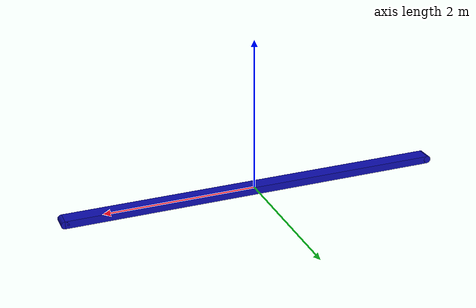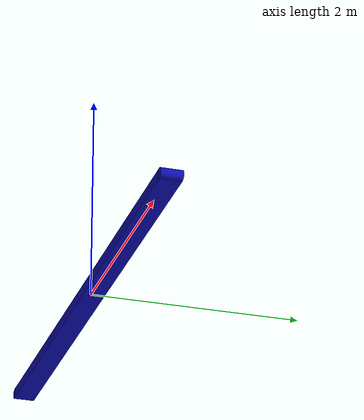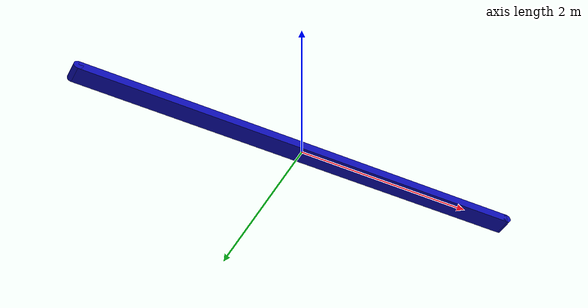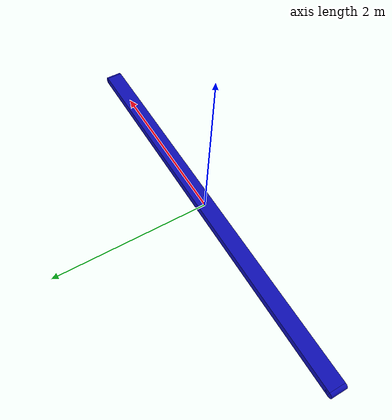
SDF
<?xml version="1.0"?>

<sdf version='1.7'>
    <model name="conveyor_gz">
        <static>1</static>
        <link name='base_link'>
            <pose relative_to='__model__'>0 0 0 0 0 0</pose>
            <inertial>
                <mass>6.06</mass>
                <inertia>
                    <ixx>0.002731</ixx>
                    <ixy>0</ixy>
                    <ixz>0</ixz>
                    <iyy>0.032554</iyy>
                    <iyz>1.5e-05</iyz>
                    <izz>0.031391</izz>
                </inertia>
            </inertial>
            <collision name='main_collision'>
                <pose relative_to='base_link'>0 0 0 0 0 0</pose>
                <geometry>
                    <box>
                        <size>5 0.2 0.1</size>
                    </box>
                </geometry>
                <surface>
                    <friction>
                        <ode>
                            <mu>0.7</mu>
                            <mu2>150</mu2>
                            <fdir1>0 1 0</fdir1>
                        </ode>
                    </friction>
                </surface>
            </collision>
            <collision name='collision_1'>
                <pose relative_to='base_link'>2.5 0 0 -1.570796327 0 0</pose>
                <geometry>
                    <cylinder>
                        <length>0.2</length>
                        <radius>0.05</radius>
                    </cylinder>
                </geometry>
                <surface>
                    <friction>
                        <ode>
                            <mu>0.7</mu>
                            <mu2>150</mu2>
                            <fdir1>0 1 0</fdir1>
                        </ode>
                    </friction>
                </surface>
            </collision>
            <collision name='collision_2'>
                <pose relative_to='base_link'>-2.5 0 0 -1.570796327 0 0</pose>
                <geometry>
                    <cylinder>
                        <length>0.2</length>
                        <radius>0.05</radius>
                    </cylinder>
                </geometry>
                <surface>
                    <friction>
                        <ode>
                            <mu>0.7</mu>
                            <mu2>150</mu2>
                            <fdir1>0 1 0</fdir1>
                        </ode>
                    </friction>
                </surface>
            </collision>
            <visual name='main_visual'>
                <pose relative_to='base_link'>0 0 0 0 0 0</pose>
                <geometry>
                    <box>
                        <size>5 0.2 0.1</size>
                    </box>
                </geometry>
                <material>
                    <ambient>0.05 0.05 0.70 1</ambient>
                    <diffuse>0.05 0.05 0.70 1</diffuse>
                    <specular>0.8 0.8 0.8 1</specular>
                </material>
            </visual>
            <visual name='visual_1'>
                <pose relative_to='base_link'>2.5 0 0 -1.570796327 0 0</pose>
                <geometry>
                    <cylinder>
                        <length>0.2</length>
                        <radius>0.05</radius>
                    </cylinder>
                </geometry>
                <material>
                    <ambient>0.05 0.05 0.70 1</ambient>
                    <diffuse>0.05 0.05 0.70 1</diffuse>
                    <specular>0.8 0.8 0.8 1</specular>
                </material>
            </visual>
            <visual name='visual_2'>
                <pose relative_to='base_link'>-2.5 0 0 -1.570796327 0 0</pose>
                <geometry>
                    <cylinder>
                        <length>0.2</length>
                        <radius>0.05</radius>
                    </cylinder>
                </geometry>
                <material>
                    <ambient>0.05 0.05 0.70 1</ambient>
                    <diffuse>0.05 0.05 0.70 1</diffuse>
                    <specular>0.8 0.8 0.8 1</specular>
                </material>
            </visual>
            <gravity>1</gravity>
            <kinematic>0</kinematic>
        </link>

        <plugin filename="gz-sim-track-controller-system"
                name="gz::sim::systems::TrackController">
            <link>base_link</link>
            <odometry_publish_frequency>1</odometry_publish_frequency>
        </plugin>

        <!-- Moving Forward: W -->
        <plugin filename="gz-sim-triggered-publisher-system"
                name="gz::sim::systems::TriggeredPublisher">
            <input type="gz.msgs.Int32" topic="/keyboard/keypress">
                <match field="data">87</match>
            </input>
            <output type="gz.msgs.Double" topic="/model/conveyor_gz/link/base_link/track_cmd_vel">
                data: 1.0
            </output>
        </plugin>

        <!-- Moving Backward: X -->
        <plugin filename="gz-sim-triggered-publisher-system"
                name="gz::sim::systems::TriggeredPublisher">
            <input type="gz.msgs.Int32" topic="/keyboard/keypress">
                <match field="data">88</match>
            </input>
            <output type="gz.msgs.Double" topic="/model/conveyor_gz/link/base_link/track_cmd_vel">
                data: -1.0
            </output>
        </plugin>

        <!-- Stop: S -->
        <plugin filename="gz-sim-triggered-publisher-system"
                name="gz::sim::systems::TriggeredPublisher">
            <input type="gz.msgs.Int32" topic="/keyboard/keypress">
                <match field="data">83</match>
            </input>
            <output type="gz.msgs.Double" topic="/model/conveyor_gz/link/base_link/track_cmd_vel">
                data: 0.0
            </output>
        </plugin>
    </model>
</sdf>
